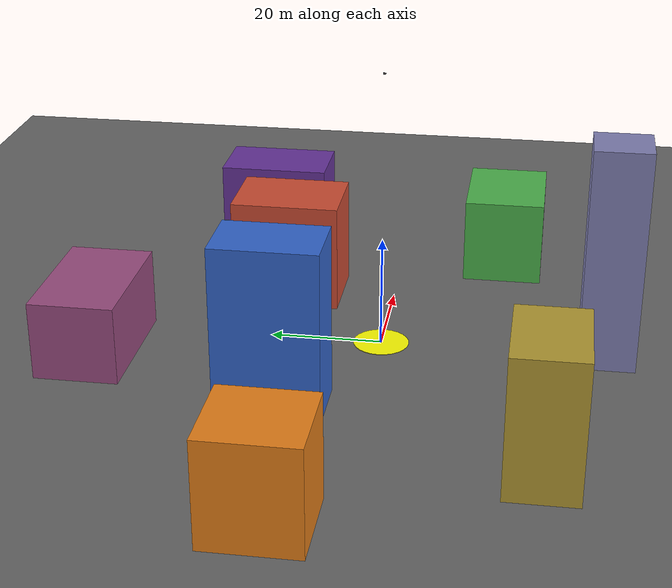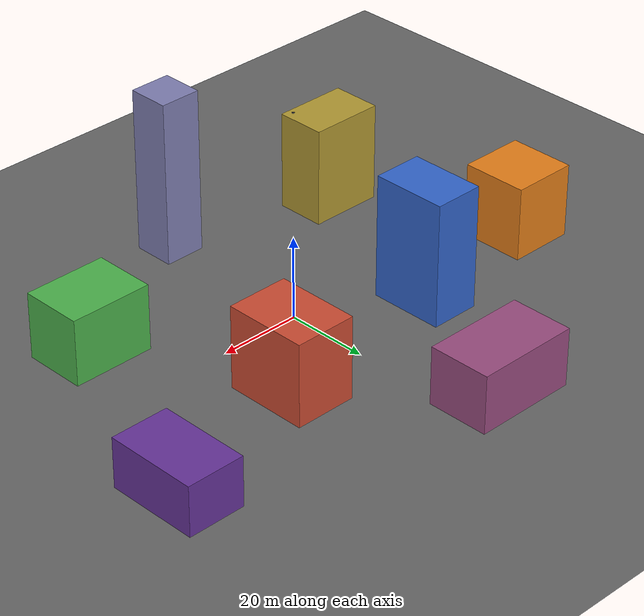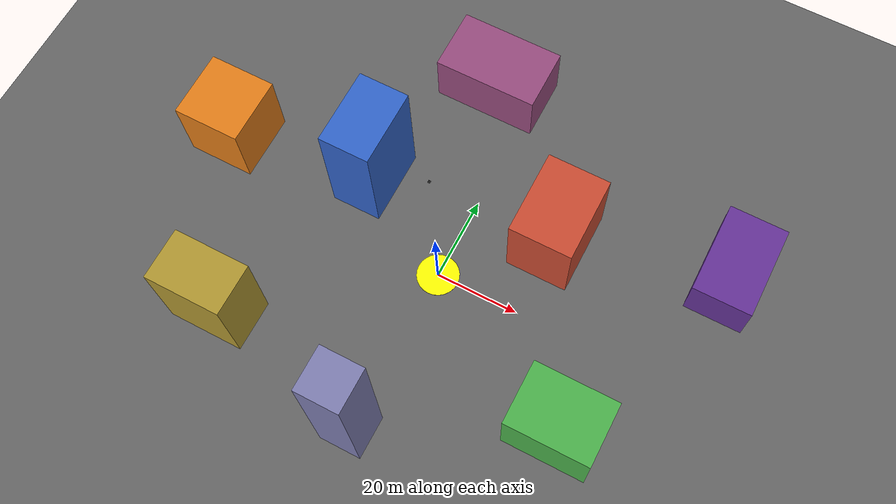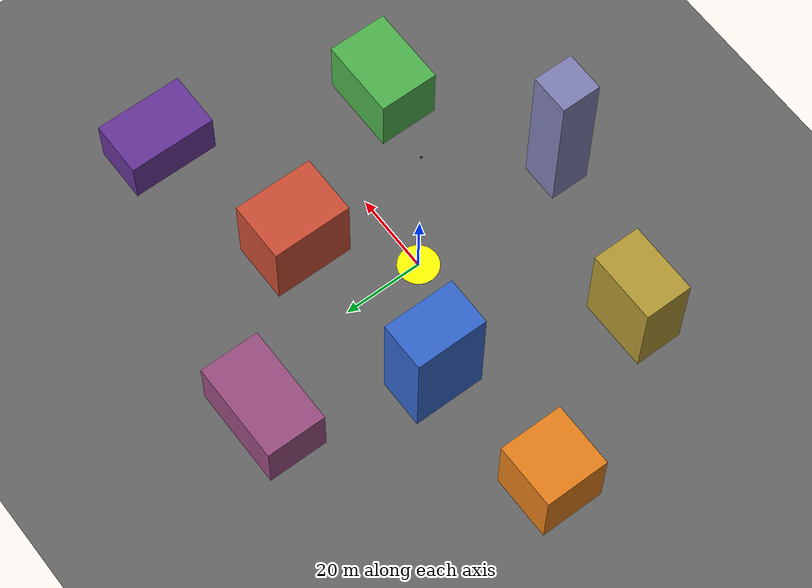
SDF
<?xml version="1.0" ?>
<sdf version="1.9">
  <world name="city">
    <plugin filename="gz-sim-physics-system" name="gz::sim::systems::Physics"/>
    <plugin filename="gz-sim-scene-broadcaster-system" name="gz::sim::systems::SceneBroadcaster"/>
    <plugin filename="gz-sim-sensors-system" name="gz::sim::systems::Sensors">
      <render_engine>ogre</render_engine>
    </plugin>
    <plugin filename="gz-sim-user-commands-system" name="gz::sim::systems::UserCommands"/>

    <light type="directional" name="sun">
      <cast_shadows>true</cast_shadows>
      <pose>0 0 10 0 0 0</pose>
      <diffuse>0.8 0.8 0.8 1</diffuse>
      <specular>0.2 0.2 0.2 1</specular>
      <direction>-0.5 0.1 -0.9</direction>
    </light>

    <model name="ground_plane">
      <static>true</static>
      <link name="link">
        <collision name="collision">
          <geometry><plane><normal>0 0 1</normal><size>500 500</size></plane></geometry>
        </collision>
        <visual name="visual">
          <geometry><plane><normal>0 0 1</normal><size>500 500</size></plane></geometry>
          <material><ambient>0.35 0.35 0.35 1</ambient><diffuse>0.4 0.4 0.4 1</diffuse></material>
        </visual>
      </link>
    </model>

    <!-- 도시 건물들 -->
    <model name="b1"><static>true</static><pose>20 20 10 0 0 0</pose>
      <link name="l">
        <collision name="c"><geometry><box><size>15 20 20</size></box></geometry></collision>
        <visual name="v"><geometry><box><size>15 20 20</size></box></geometry>
          <material><ambient>0.8 0.3 0.2 1</ambient><diffuse>0.8 0.3 0.2 1</diffuse></material></visual>
      </link>
    </model>
    <model name="b2"><static>true</static><pose>-25 15 15 0 0 0</pose>
      <link name="l">
        <collision name="c"><geometry><box><size>12 18 30</size></box></geometry></collision>
        <visual name="v"><geometry><box><size>12 18 30</size></box></geometry>
          <material><ambient>0.2 0.4 0.8 1</ambient><diffuse>0.2 0.4 0.8 1</diffuse></material></visual>
      </link>
    </model>
    <model name="b3"><static>true</static><pose>40 -20 8 0 0 0</pose>
      <link name="l">
        <collision name="c"><geometry><box><size>20 15 16</size></box></geometry></collision>
        <visual name="v"><geometry><box><size>20 15 16</size></box></geometry>
          <material><ambient>0.3 0.7 0.3 1</ambient><diffuse>0.3 0.7 0.3 1</diffuse></material></visual>
      </link>
    </model>
    <model name="b4"><static>true</static><pose>-40 -30 12 0 0 0</pose>
      <link name="l">
        <collision name="c"><geometry><box><size>18 12 24</size></box></geometry></collision>
        <visual name="v"><geometry><box><size>18 12 24</size></box></geometry>
          <material><ambient>0.7 0.6 0.2 1</ambient><diffuse>0.7 0.6 0.2 1</diffuse></material></visual>
      </link>
    </model>
    <model name="b5"><static>true</static><pose>0 -40 20 0 0 0</pose>
      <link name="l">
        <collision name="c"><geometry><box><size>10 10 40</size></box></geometry></collision>
        <visual name="v"><geometry><box><size>10 10 40</size></box></geometry>
          <material><ambient>0.5 0.5 0.7 1</ambient><diffuse>0.5 0.5 0.7 1</diffuse></material></visual>
      </link>
    </model>
    <model name="b6"><static>true</static><pose>-10 50 7 0 0 0</pose>
      <link name="l">
        <collision name="c"><geometry><box><size>25 15 14</size></box></geometry></collision>
        <visual name="v"><geometry><box><size>25 15 14</size></box></geometry>
          <material><ambient>0.6 0.3 0.5 1</ambient><diffuse>0.6 0.3 0.5 1</diffuse></material></visual>
      </link>
    </model>
    <model name="b7"><static>true</static><pose>60 30 6 0 0 0</pose>
      <link name="l">
        <collision name="c"><geometry><box><size>14 22 12</size></box></geometry></collision>
        <visual name="v"><geometry><box><size>14 22 12</size></box></geometry>
          <material><ambient>0.4 0.2 0.6 1</ambient><diffuse>0.4 0.2 0.6 1</diffuse></material></visual>
      </link>
    </model>
    <model name="b8"><static>true</static><pose>-60 10 9 0 0 0</pose>
      <link name="l">
        <collision name="c"><geometry><box><size>16 16 18</size></box></geometry></collision>
        <visual name="v"><geometry><box><size>16 16 18</size></box></geometry>
          <material><ambient>0.9 0.5 0.1 1</ambient><diffuse>0.9 0.5 0.1 1</diffuse></material></visual>
      </link>
    </model>

    <!-- 헬리패드 (착륙 목표) -->
    <model name="helipad"><static>true</static><pose>0 0 0.05 0 0 0</pose>
      <link name="l">
        <visual name="v">
          <geometry><cylinder><radius>5</radius><length>0.1</length></cylinder></geometry>
          <material><ambient>1 1 0 1</ambient><diffuse>1 1 0 1</diffuse></material>
        </visual>
      </link>
    </model>

    <!-- 드론 (아래쪽 카메라 포함) -->
    <model name="drone">
      <pose>0 0 50 0 0 0</pose>
      <link name="base_link">
        <inertial>
          <mass>1.5</mass>
          <inertia><ixx>0.03</ixx><iyy>0.03</iyy><izz>0.06</izz><ixy>0</ixy><ixz>0</ixz><iyz>0</iyz></inertia>
        </inertial>
        <collision name="c">
          <geometry><box><size>0.5 0.5 0.15</size></box></geometry>
        </collision>
        <visual name="v">
          <geometry><box><size>0.5 0.5 0.15</size></box></geometry>
          <material><ambient>0.1 0.1 0.1 1</ambient><diffuse>0.1 0.1 0.1 1</diffuse></material>
        </visual>

        <!-- 아래 방향 카메라 -->
        <sensor name="downward_camera" type="camera">
          <pose>0 0 -0.1 0 1.5707963 0</pose>
          <camera>
            <horizontal_fov>1.047</horizontal_fov>
            <image><width>640</width><height>480</height><format>R8G8B8</format></image>
            <clip><near>0.1</near><far>500</far></clip>
          </camera>
          <always_on>true</always_on>
          <update_rate>10</update_rate>
          <visualize>false</visualize>
          <topic>/drone/camera/image</topic>
        </sensor>
      </link>
    </model>

  </world>
</sdf>
